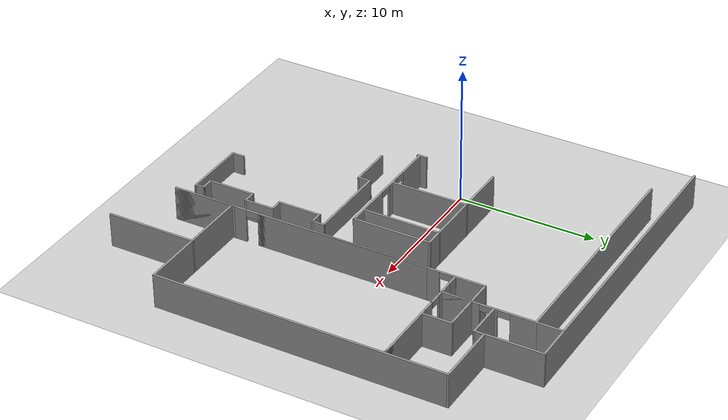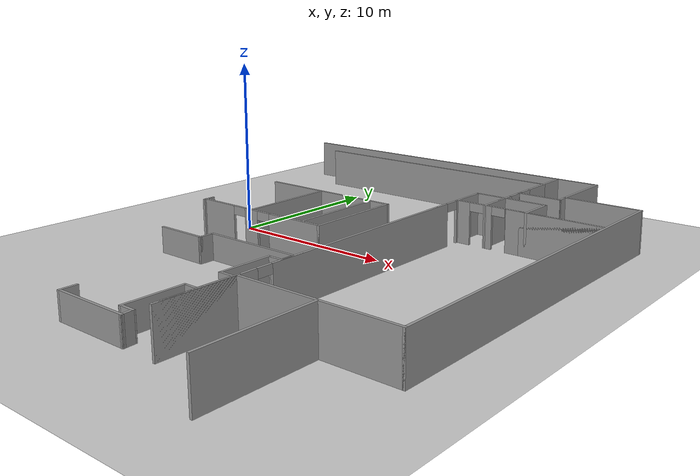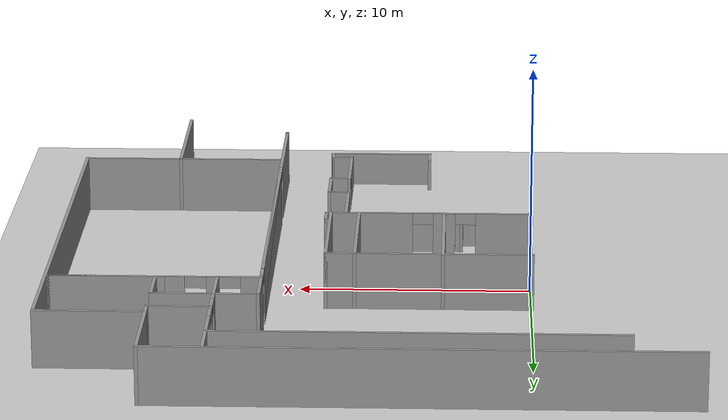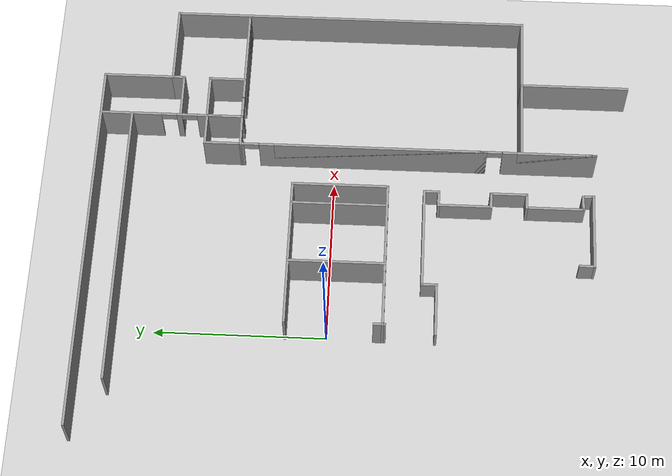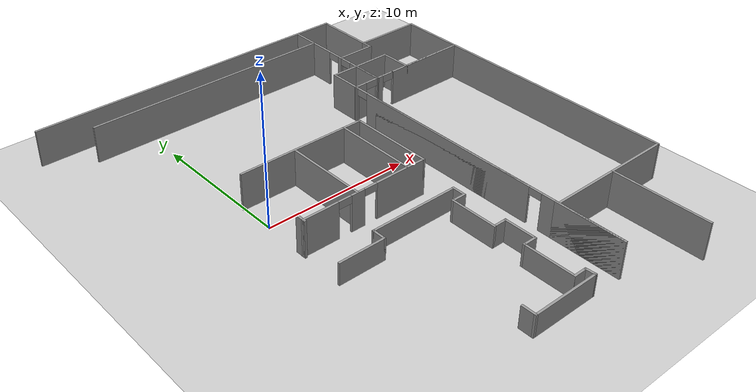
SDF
<sdf version="1.6">
 <world name="default">
  <model name="ground_plane">
   <static>1</static>
   <link name="link">
    <collision name="collision">
     <geometry><plane><normal>0 0 1</normal><size>100 100</size></plane></geometry>
     <surface><friction><ode><mu>100</mu><mu2>50</mu2></ode></friction></surface>
    </collision>
    <visual name="visual">
     <cast_shadows>0</cast_shadows>
     <geometry><plane><normal>0 0 1</normal><size>100 100</size></plane></geometry>
     <material>
      <script><uri>file://media/materials/scripts/gazebo.material</uri><name>Gazebo/Grey</name></script>
     </material>
    </visual>
   </link>
  </model>
  <model name="REPF">
   <pose>-1.32849 -1.57577 0 0 -0 0</pose>
   <link name="Wall_293">
    <collision name="Wall_293_Collision">
     <geometry><box><size>6.5 0.15 2.5</size></box></geometry>
     <pose>0 0 1.25 0 -0 0</pose>
    </collision>
    <visual name="Wall_293_Visual">
     <pose>0 0 1.25 0 -0 0</pose>
     <geometry><box><size>6.5 0.15 2.5</size></box></geometry>
     <material>
      <script><uri>file://media/materials/scripts/gazebo.material</uri><name>Gazebo/Grey</name></script>
      <ambient>1 1 1 1</ambient>
     </material>
    </visual>
    <pose>17.421 -12.6729 0 0 -0 1.5708</pose>
   </link>
   <link name="Wall_294">
    <collision name="Wall_294_Collision">
     <geometry><box><size>4.5 0.15 2.5</size></box></geometry>
     <pose>0 0 1.25 0 -0 0</pose>
    </collision>
    <visual name="Wall_294_Visual">
     <pose>0 0 1.25 0 -0 0</pose>
     <geometry><box><size>4.5 0.15 2.5</size></box></geometry>
     <material>
      <script><uri>file://media/materials/scripts/gazebo.material</uri><name>Gazebo/Grey</name></script>
      <ambient>1 1 1 1</ambient>
     </material>
    </visual>
    <pose>19.596 -9.49791 0 0 -0 0</pose>
   </link>
   <link name="Wall_295">
    <collision name="Wall_295_Collision">
     <geometry><box><size>21.25 0.15 2.5</size></box></geometry>
     <pose>0 0 1.25 0 -0 0</pose>
    </collision>
    <visual name="Wall_295_Visual">
     <pose>0 0 1.25 0 -0 0</pose>
     <geometry><box><size>21.25 0.15 2.5</size></box></geometry>
     <material>
      <script><uri>file://media/materials/scripts/gazebo.material</uri><name>Gazebo/Grey</name></script>
      <ambient>1 1 1 1</ambient>
     </material>
    </visual>
    <pose>21.771 1.05209 0 0 -0 1.5708</pose>
   </link>
   <link name="Wall_296">
    <collision name="Wall_296_Collision">
     <geometry><box><size>4.75 0.15 2.5</size></box></geometry>
     <pose>0 0 1.25 0 -0 0</pose>
    </collision>
    <visual name="Wall_296_Visual">
     <pose>0 0 1.25 0 -0 0</pose>
     <geometry><box><size>4.75 0.15 2.5</size></box></geometry>
     <material>
      <script><uri>file://media/materials/scripts/gazebo.material</uri><name>Gazebo/Grey</name></script>
      <ambient>1 1 1 1</ambient>
     </material>
    </visual>
    <pose>19.471 11.6021 0 0 -0 3.14159</pose>
   </link>
   <link name="Wall_297">
    <collision name="Wall_297_Collision">
     <geometry><box><size>4.25 0.15 2.5</size></box></geometry>
     <pose>0 0 1.25 0 -0 0</pose>
    </collision>
    <visual name="Wall_297_Visual">
     <pose>0 0 1.25 0 -0 0</pose>
     <geometry><box><size>4.25 0.15 2.5</size></box></geometry>
     <material>
      <script><uri>file://media/materials/scripts/gazebo.material</uri><name>Gazebo/Grey</name></script>
      <ambient>1 1 1 1</ambient>
     </material>
    </visual>
    <pose>17.171 13.6521 0 0 -0 1.5708</pose>
   </link>
   <link name="Wall_298">
    <collision name="Wall_298_Collision">
     <geometry><box><size>22.75 0.15 2.5</size></box></geometry>
     <pose>0 0 1.25 0 -0 0</pose>
    </collision>
    <visual name="Wall_298_Visual">
     <pose>0 0 1.25 0 -0 0</pose>
     <geometry><box><size>22.75 0.15 2.5</size></box></geometry>
     <material>
      <script><uri>file://media/materials/scripts/gazebo.material</uri><name>Gazebo/Grey</name></script>
      <ambient>1 1 1 1</ambient>
     </material>
    </visual>
    <pose>5.87097 15.7021 0 0 -0 3.14159</pose>
   </link>
   <link name="Wall_309">
    <collision name="Wall_309_Collision">
     <geometry><box><size>17.25 0.15 2.5</size></box></geometry>
     <pose>0 0 1.25 0 -0 0</pose>
    </collision>
    <visual name="Wall_309_Visual">
     <pose>0 0 1.25 0 -0 0</pose>
     <geometry><box><size>17.25 0.15 2.5</size></box></geometry>
     <material>
      <script><uri>file://media/materials/scripts/gazebo.material</uri><name>Gazebo/Grey</name></script>
      <ambient>1 1 1 1</ambient>
     </material>
    </visual>
    <pose>5.99398 13.832 0 0 -0 0</pose>
   </link>
   <link name="Wall_310">
    <collision name="Wall_310_Collision">
     <geometry><box><size>2 0.15 2.5</size></box></geometry>
     <pose>0 0 1.25 0 -0 0</pose>
    </collision>
    <visual name="Wall_310_Visual">
     <pose>0 0 1.25 0 -0 0</pose>
     <geometry><box><size>2 0.15 2.5</size></box></geometry>
     <material>
      <script><uri>file://media/materials/scripts/gazebo.material</uri><name>Gazebo/Grey</name></script>
      <ambient>1 1 1 1</ambient>
     </material>
    </visual>
    <pose>14.544 14.757 0 0 -0 1.5708</pose>
   </link>
   <link name="Wall_312">
    <pose>14.544 10.532 0 0 0 -1.5708</pose>
    <visual name="Wall_312_Visual_0">
     <pose>-2.44988 0 1.25 0 -0 0</pose>
     <geometry><box><size>1.85025 0.15 2.5</size></box></geometry>
     <material>
      <script><uri>file://media/materials/scripts/gazebo.material</uri><name>Gazebo/Grey</name></script>
      <ambient>1 1 1 1</ambient>
     </material>
    </visual>
    <collision name="Wall_312_Collision_0">
     <geometry><box><size>1.85025 0.15 2.5</size></box></geometry>
     <pose>-2.44988 0 1.25 0 -0 0</pose>
    </collision>
    <visual name="Wall_312_Visual_1">
     <pose>-0.462424 0 1.25 0 -0 0</pose>
     <geometry><box><size>0.324652 0.15 2.5</size></box></geometry>
     <material>
      <script><uri>file://media/materials/scripts/gazebo.material</uri><name>Gazebo/Grey</name></script>
      <ambient>1 1 1 1</ambient>
     </material>
    </visual>
    <collision name="Wall_312_Collision_1">
     <geometry><box><size>0.324652 0.15 2.5</size></box></geometry>
     <pose>-0.462424 0 1.25 0 -0 0</pose>
    </collision>
    <visual name="Wall_312_Visual_2">
     <pose>1.98745 0 1.25 0 -0 0</pose>
     <geometry><box><size>2.7751 0.15 2.5</size></box></geometry>
     <material>
      <script><uri>file://media/materials/scripts/gazebo.material</uri><name>Gazebo/Grey</name></script>
      <ambient>1 1 1 1</ambient>
     </material>
    </visual>
    <collision name="Wall_312_Collision_2">
     <geometry><box><size>2.7751 0.15 2.5</size></box></geometry>
     <pose>1.98745 0 1.25 0 -0 0</pose>
    </collision>
    <visual name="Wall_312_Visual_3">
     <pose>-1.07475 0 2.25 0 -0 0</pose>
     <geometry><box><size>0.9 0.15 0.5</size></box></geometry>
     <material>
      <script><uri>file://media/materials/scripts/gazebo.material</uri><name>Gazebo/Grey</name></script>
      <ambient>1 1 1 1</ambient>
     </material>
    </visual>
    <collision name="Wall_312_Collision_3">
     <geometry><box><size>0.9 0.15 0.5</size></box></geometry>
     <pose>-1.07475 0 2.25 0 -0 0</pose>
    </collision>
    <visual name="Wall_312_Visual_4">
     <pose>0.149902 0 2.25 0 -0 0</pose>
     <geometry><box><size>0.9 0.15 0.5</size></box></geometry>
     <material>
      <script><uri>file://media/materials/scripts/gazebo.material</uri><name>Gazebo/Grey</name></script>
      <ambient>1 1 1 1</ambient>
     </material>
    </visual>
    <collision name="Wall_312_Collision_4">
     <geometry><box><size>0.9 0.15 0.5</size></box></geometry>
     <pose>0.149902 0 2.25 0 -0 0</pose>
    </collision>
   </link>
   <link name="Wall_313">
    <pose>13.619 7.22222 0 0 0 -3.13104</pose>
    <visual name="Wall_313_Visual_0">
     <pose>-0.91553 0 1.25 0 -0 0</pose>
     <geometry><box><size>0.168939 0.15 2.5</size></box></geometry>
     <material>
      <script><uri>file://media/materials/scripts/gazebo.material</uri><name>Gazebo/Grey</name></script>
      <ambient>1 1 1 1</ambient>
     </material>
    </visual>
    <collision name="Wall_313_Collision_0">
     <geometry><box><size>0.168939 0.15 2.5</size></box></geometry>
     <pose>-0.91553 0 1.25 0 -0 0</pose>
    </collision>
    <visual name="Wall_313_Visual_1">
     <pose>0.53447 0 1.25 0 -0 0</pose>
     <geometry><box><size>0.931061 0.15 2.5</size></box></geometry>
     <material>
      <script><uri>file://media/materials/scripts/gazebo.material</uri><name>Gazebo/Grey</name></script>
      <ambient>1 1 1 1</ambient>
     </material>
    </visual>
    <collision name="Wall_313_Collision_1">
     <geometry><box><size>0.931061 0.15 2.5</size></box></geometry>
     <pose>0.53447 0 1.25 0 -0 0</pose>
    </collision>
    <visual name="Wall_313_Visual_2">
     <pose>-0.381061 0 2.25 0 -0 0</pose>
     <geometry><box><size>0.9 0.15 0.5</size></box></geometry>
     <material>
      <script><uri>file://media/materials/scripts/gazebo.material</uri><name>Gazebo/Grey</name></script>
      <ambient>1 1 1 1</ambient>
     </material>
    </visual>
    <collision name="Wall_313_Collision_2">
     <geometry><box><size>0.9 0.15 0.5</size></box></geometry>
     <pose>-0.381061 0 2.25 0 -0 0</pose>
    </collision>
   </link>
   <link name="Wall_314">
    <collision name="Wall_314_Collision">
     <geometry><box><size>2.26953 0.15 2.5</size></box></geometry>
     <pose>0 0 1.25 0 -0 0</pose>
    </collision>
    <visual name="Wall_314_Visual">
     <pose>0 0 1.25 0 -0 0</pose>
     <geometry><box><size>2.26953 0.15 2.5</size></box></geometry>
     <material>
      <script><uri>file://media/materials/scripts/gazebo.material</uri><name>Gazebo/Grey</name></script>
      <ambient>1 1 1 1</ambient>
     </material>
    </visual>
    <pose>12.694 8.27222 0 0 -0 1.5708</pose>
   </link>
   <link name="Wall_315">
    <collision name="Wall_315_Collision">
     <geometry><box><size>2 0.15 2.5</size></box></geometry>
     <pose>0 0 1.25 0 -0 0</pose>
    </collision>
    <visual name="Wall_315_Visual">
     <pose>0 0 1.25 0 -0 0</pose>
     <geometry><box><size>2 0.15 2.5</size></box></geometry>
     <material>
      <script><uri>file://media/materials/scripts/gazebo.material</uri><name>Gazebo/Grey</name></script>
      <ambient>1 1 1 1</ambient>
     </material>
    </visual>
    <pose>13.619 9.33198 0 0 -0 0</pose>
   </link>
   <link name="Wall_317">
    <collision name="Wall_317_Collision">
     <geometry><box><size>2.75 0.15 2.5</size></box></geometry>
     <pose>0 0 1.25 0 -0 0</pose>
    </collision>
    <visual name="Wall_317_Visual">
     <pose>0 0 1.25 0 -0 0</pose>
     <geometry><box><size>2.75 0.15 2.5</size></box></geometry>
     <material>
      <script><uri>file://media/materials/scripts/gazebo.material</uri><name>Gazebo/Grey</name></script>
      <ambient>1 1 1 1</ambient>
     </material>
    </visual>
    <pose>15.8713 10.9244 0 0 -0 0</pose>
   </link>
   <link name="Wall_318">
    <collision name="Wall_318_Collision">
     <geometry><box><size>0.827663 0.15 2.5</size></box></geometry>
     <pose>0 0 1.25 0 -0 0</pose>
    </collision>
    <visual name="Wall_318_Visual">
     <pose>0 0 1.25 0 -0 0</pose>
     <geometry><box><size>0.827663 0.15 2.5</size></box></geometry>
     <material>
      <script><uri>file://media/materials/scripts/gazebo.material</uri><name>Gazebo/Grey</name></script>
      <ambient>1 1 1 1</ambient>
     </material>
    </visual>
    <pose>17.1711 11.2633 0 0 -0 1.57131</pose>
   </link>
   <link name="Wall_320">
    <collision name="Wall_320_Collision">
     <geometry><box><size>2.25 0.15 2.5</size></box></geometry>
     <pose>0 0 1.25 0 -0 0</pose>
    </collision>
    <visual name="Wall_320_Visual">
     <pose>0 0 1.25 0 -0 0</pose>
     <geometry><box><size>2.25 0.15 2.5</size></box></geometry>
     <material>
      <script><uri>file://media/materials/scripts/gazebo.material</uri><name>Gazebo/Grey</name></script>
      <ambient>1 1 1 1</ambient>
     </material>
    </visual>
    <pose>14.544 8.28198 0 0 0 -1.5708</pose>
   </link>
   <link name="Wall_321">
    <pose>18.094 7.23198 0 0 -0 0</pose>
    <visual name="Wall_321_Visual_0">
     <pose>-3.36352 0 1.25 0 -0 0</pose>
     <geometry><box><size>0.522969 0.15 2.5</size></box></geometry>
     <material>
      <script><uri>file://media/materials/scripts/gazebo.material</uri><name>Gazebo/Grey</name></script>
      <ambient>1 1 1 1</ambient>
     </material>
    </visual>
    <collision name="Wall_321_Collision_0">
     <geometry><box><size>0.522969 0.15 2.5</size></box></geometry>
     <pose>-3.36352 0 1.25 0 -0 0</pose>
    </collision>
    <visual name="Wall_321_Visual_1">
     <pose>0.711485 0 1.25 0 -0 0</pose>
     <geometry><box><size>5.82703 0.15 2.5</size></box></geometry>
     <material>
      <script><uri>file://media/materials/scripts/gazebo.material</uri><name>Gazebo/Grey</name></script>
      <ambient>1 1 1 1</ambient>
     </material>
    </visual>
    <collision name="Wall_321_Collision_1">
     <geometry><box><size>5.82703 0.15 2.5</size></box></geometry>
     <pose>0.711485 0 1.25 0 -0 0</pose>
    </collision>
    <visual name="Wall_321_Visual_2">
     <pose>1.13616 0 1.25 0 -0 0</pose>
     <geometry><box><size>4.97768 0.15 2.5</size></box></geometry>
     <material>
      <script><uri>file://media/materials/scripts/gazebo.material</uri><name>Gazebo/Grey</name></script>
      <ambient>1 1 1 1</ambient>
     </material>
    </visual>
    <collision name="Wall_321_Collision_2">
     <geometry><box><size>4.97768 0.15 2.5</size></box></geometry>
     <pose>1.13616 0 1.25 0 -0 0</pose>
    </collision>
    <visual name="Wall_321_Visual_3">
     <pose>-2.67735 0 2.25 0 -0 0</pose>
     <geometry><box><size>0.849354 0.15 0.5</size></box></geometry>
     <material>
      <script><uri>file://media/materials/scripts/gazebo.material</uri><name>Gazebo/Grey</name></script>
      <ambient>1 1 1 1</ambient>
     </material>
    </visual>
    <collision name="Wall_321_Collision_3">
     <geometry><box><size>0.849354 0.15 0.5</size></box></geometry>
     <pose>-2.67735 0 2.25 0 -0 0</pose>
    </collision>
   </link>
   <link name="Wall_323">
    <collision name="Wall_323_Collision">
     <geometry><box><size>2.75 0.15 2.5</size></box></geometry>
     <pose>0 0 1.25 0 -0 0</pose>
    </collision>
    <visual name="Wall_323_Visual">
     <pose>0 0 1.25 0 -0 0</pose>
     <geometry><box><size>2.75 0.15 2.5</size></box></geometry>
     <material>
      <script><uri>file://media/materials/scripts/gazebo.material</uri><name>Gazebo/Grey</name></script>
      <ambient>1 1 1 1</ambient>
     </material>
    </visual>
    <pose>15.844 9.33198 0 0 -0 0</pose>
   </link>
   <link name="Wall_324">
    <collision name="Wall_324_Collision">
     <geometry><box><size>2.25 0.15 2.5</size></box></geometry>
     <pose>0 0 1.25 0 -0 0</pose>
    </collision>
    <visual name="Wall_324_Visual">
     <pose>0 0 1.25 0 -0 0</pose>
     <geometry><box><size>2.25 0.15 2.5</size></box></geometry>
     <material>
      <script><uri>file://media/materials/scripts/gazebo.material</uri><name>Gazebo/Grey</name></script>
      <ambient>1 1 1 1</ambient>
     </material>
    </visual>
    <pose>17.144 8.28198 0 0 0 -1.5708</pose>
   </link>
   <link name="Wall_327">
    <pose>12.694 -3.32778 0 0 0 -1.5708</pose>
    <visual name="Wall_327_Visual_0">
     <pose>-10.4755 0 1.25 0 -0 0</pose>
     <geometry><box><size>0.29897 0.15 2.5</size></box></geometry>
     <material>
      <script><uri>file://media/materials/scripts/gazebo.material</uri><name>Gazebo/Grey</name></script>
      <ambient>1 1 1 1</ambient>
     </material>
    </visual>
    <collision name="Wall_327_Collision_0">
     <geometry><box><size>0.29897 0.15 2.5</size></box></geometry>
     <pose>-10.4755 0 1.25 0 -0 0</pose>
    </collision>
    <visual name="Wall_327_Visual_1">
     <pose>-2.64993 0 1.25 0 -0 0</pose>
     <geometry><box><size>13.5522 0.15 2.5</size></box></geometry>
     <material>
      <script><uri>file://media/materials/scripts/gazebo.material</uri><name>Gazebo/Grey</name></script>
      <ambient>1 1 1 1</ambient>
     </material>
    </visual>
    <collision name="Wall_327_Collision_1">
     <geometry><box><size>13.5522 0.15 2.5</size></box></geometry>
     <pose>-2.64993 0 1.25 0 -0 0</pose>
    </collision>
    <visual name="Wall_327_Visual_2">
     <pose>-2.20373 0 1.25 0 -0 0</pose>
     <geometry><box><size>12.6598 0.15 2.5</size></box></geometry>
     <material>
      <script><uri>file://media/materials/scripts/gazebo.material</uri><name>Gazebo/Grey</name></script>
      <ambient>1 1 1 1</ambient>
     </material>
    </visual>
    <collision name="Wall_327_Collision_2">
     <geometry><box><size>12.6598 0.15 2.5</size></box></geometry>
     <pose>-2.20373 0 1.25 0 -0 0</pose>
    </collision>
    <visual name="Wall_327_Visual_3">
     <pose>7.82559 0 1.25 0 -0 0</pose>
     <geometry><box><size>5.59883 0.15 2.5</size></box></geometry>
     <material>
      <script><uri>file://media/materials/scripts/gazebo.material</uri><name>Gazebo/Grey</name></script>
      <ambient>1 1 1 1</ambient>
     </material>
    </visual>
    <collision name="Wall_327_Collision_3">
     <geometry><box><size>5.59883 0.15 2.5</size></box></geometry>
     <pose>7.82559 0 1.25 0 -0 0</pose>
    </collision>
    <visual name="Wall_327_Visual_4">
     <pose>8.27478 0 1.25 0 -0 0</pose>
     <geometry><box><size>4.70045 0.15 2.5</size></box></geometry>
     <material>
      <script><uri>file://media/materials/scripts/gazebo.material</uri><name>Gazebo/Grey</name></script>
      <ambient>1 1 1 1</ambient>
     </material>
    </visual>
    <collision name="Wall_327_Collision_4">
     <geometry><box><size>4.70045 0.15 2.5</size></box></geometry>
     <pose>8.27478 0 1.25 0 -0 0</pose>
    </collision>
    <visual name="Wall_327_Visual_5">
     <pose>-9.87983 0 2.25 0 -0 0</pose>
     <geometry><box><size>0.892405 0.15 0.5</size></box></geometry>
     <material>
      <script><uri>file://media/materials/scripts/gazebo.material</uri><name>Gazebo/Grey</name></script>
      <ambient>1 1 1 1</ambient>
     </material>
    </visual>
    <collision name="Wall_327_Collision_5">
     <geometry><box><size>0.892405 0.15 0.5</size></box></geometry>
     <pose>-9.87983 0 2.25 0 -0 0</pose>
    </collision>
    <visual name="Wall_327_Visual_6">
     <pose>4.57536 0 2.25 0 -0 0</pose>
     <geometry><box><size>0.89838 0.15 0.5</size></box></geometry>
     <material>
      <script><uri>file://media/materials/scripts/gazebo.material</uri><name>Gazebo/Grey</name></script>
      <ambient>1 1 1 1</ambient>
     </material>
    </visual>
    <collision name="Wall_327_Collision_6">
     <geometry><box><size>0.89838 0.15 0.5</size></box></geometry>
     <pose>4.57536 0 2.25 0 -0 0</pose>
    </collision>
    <visual name="Wall_327_Visual_7">
     <pose>4.57536 0 2.25 0 -0 0</pose>
     <geometry><box><size>0.89838 0.15 0.5</size></box></geometry>
     <material>
      <script><uri>file://media/materials/scripts/gazebo.material</uri><name>Gazebo/Grey</name></script>
      <ambient>1 1 1 1</ambient>
     </material>
    </visual>
    <collision name="Wall_327_Collision_7">
     <geometry><box><size>0.89838 0.15 0.5</size></box></geometry>
     <pose>4.57536 0 2.25 0 -0 0</pose>
    </collision>
   </link>
   <link name="Wall_329">
    <collision name="Wall_329_Collision">
     <geometry><box><size>4.75 0.15 2.5</size></box></geometry>
     <pose>0 0 1.25 0 -0 0</pose>
    </collision>
    <visual name="Wall_329_Visual">
     <pose>0 0 1.25 0 -0 0</pose>
     <geometry><box><size>4.75 0.15 2.5</size></box></geometry>
     <material>
      <script><uri>file://media/materials/scripts/gazebo.material</uri><name>Gazebo/Grey</name></script>
      <ambient>1 1 1 1</ambient>
     </material>
    </visual>
    <pose>15.121 -9.49791 0 0 -0 3.14159</pose>
   </link>
   <link name="Wall_345">
    <pose>5.7082 -1.64702 0 0 -0 0</pose>
    <visual name="Wall_345_Visual_0">
     <pose>-3.24073 0 1.25 0 -0 0</pose>
     <geometry><box><size>2.51854 0.15 2.5</size></box></geometry>
     <material>
      <script><uri>file://media/materials/scripts/gazebo.material</uri><name>Gazebo/Grey</name></script>
      <ambient>1 1 1 1</ambient>
     </material>
    </visual>
    <collision name="Wall_345_Collision_0">
     <geometry><box><size>2.51854 0.15 2.5</size></box></geometry>
     <pose>-3.24073 0 1.25 0 -0 0</pose>
    </collision>
    <visual name="Wall_345_Visual_1">
     <pose>-0.593536 0 1.25 0 -0 0</pose>
     <geometry><box><size>0.97585 0.15 2.5</size></box></geometry>
     <material>
      <script><uri>file://media/materials/scripts/gazebo.material</uri><name>Gazebo/Grey</name></script>
      <ambient>1 1 1 1</ambient>
     </material>
    </visual>
    <collision name="Wall_345_Collision_1">
     <geometry><box><size>0.97585 0.15 2.5</size></box></geometry>
     <pose>-0.593536 0 1.25 0 -0 0</pose>
    </collision>
    <visual name="Wall_345_Visual_2">
     <pose>2.64719 0 1.25 0 -0 0</pose>
     <geometry><box><size>3.70561 0.15 2.5</size></box></geometry>
     <material>
      <script><uri>file://media/materials/scripts/gazebo.material</uri><name>Gazebo/Grey</name></script>
      <ambient>1 1 1 1</ambient>
     </material>
    </visual>
    <collision name="Wall_345_Collision_2">
     <geometry><box><size>3.70561 0.15 2.5</size></box></geometry>
     <pose>2.64719 0 1.25 0 -0 0</pose>
    </collision>
    <visual name="Wall_345_Visual_3">
     <pose>-1.53146 0 2.25 0 -0 0</pose>
     <geometry><box><size>0.9 0.15 0.5</size></box></geometry>
     <material>
      <script><uri>file://media/materials/scripts/gazebo.material</uri><name>Gazebo/Grey</name></script>
      <ambient>1 1 1 1</ambient>
     </material>
    </visual>
    <collision name="Wall_345_Collision_3">
     <geometry><box><size>0.9 0.15 0.5</size></box></geometry>
     <pose>-1.53146 0 2.25 0 -0 0</pose>
    </collision>
    <visual name="Wall_345_Visual_4">
     <pose>0.344389 0 2.25 0 -0 0</pose>
     <geometry><box><size>0.9 0.15 0.5</size></box></geometry>
     <material>
      <script><uri>file://media/materials/scripts/gazebo.material</uri><name>Gazebo/Grey</name></script>
      <ambient>1 1 1 1</ambient>
     </material>
    </visual>
    <collision name="Wall_345_Collision_4">
     <geometry><box><size>0.9 0.15 0.5</size></box></geometry>
     <pose>0.344389 0 2.25 0 -0 0</pose>
    </collision>
   </link>
   <link name="Wall_346">
    <collision name="Wall_346_Collision">
     <geometry><box><size>5.75 0.15 2.5</size></box></geometry>
     <pose>0 0 1.25 0 -0 0</pose>
    </collision>
    <visual name="Wall_346_Visual">
     <pose>0 0 1.25 0 -0 0</pose>
     <geometry><box><size>5.75 0.15 2.5</size></box></geometry>
     <material>
      <script><uri>file://media/materials/scripts/gazebo.material</uri><name>Gazebo/Grey</name></script>
      <ambient>1 1 1 1</ambient>
     </material>
    </visual>
    <pose>10.1332 1.15298 0 0 -0 1.5708</pose>
   </link>
   <link name="Wall_347">
    <collision name="Wall_347_Collision">
     <geometry><box><size>9 0.15 2.5</size></box></geometry>
     <pose>0 0 1.25 0 -0 0</pose>
    </collision>
    <visual name="Wall_347_Visual">
     <pose>0 0 1.25 0 -0 0</pose>
     <geometry><box><size>9 0.15 2.5</size></box></geometry>
     <material>
      <script><uri>file://media/materials/scripts/gazebo.material</uri><name>Gazebo/Grey</name></script>
      <ambient>1 1 1 1</ambient>
     </material>
    </visual>
    <pose>5.7082 3.95298 0 0 -0 3.14159</pose>
   </link>
   <link name="Wall_350">
    <collision name="Wall_350_Collision">
     <geometry><box><size>0.75 0.15 2.5</size></box></geometry>
     <pose>0 0 1.25 0 -0 0</pose>
    </collision>
    <visual name="Wall_350_Visual">
     <pose>0 0 1.25 0 -0 0</pose>
     <geometry><box><size>0.75 0.15 2.5</size></box></geometry>
     <material>
      <script><uri>file://media/materials/scripts/gazebo.material</uri><name>Gazebo/Grey</name></script>
      <ambient>1 1 1 1</ambient>
     </material>
    </visual>
    <pose>1.2916 -1.46431 0 0 -0 1.5708</pose>
   </link>
   <link name="Wall_352">
    <collision name="Wall_352_Collision">
     <geometry><box><size>5.75 0.15 2.5</size></box></geometry>
     <pose>0 0 1.25 0 -0 0</pose>
    </collision>
    <visual name="Wall_352_Visual">
     <pose>0 0 1.25 0 -0 0</pose>
     <geometry><box><size>5.75 0.15 2.5</size></box></geometry>
     <material>
      <script><uri>file://media/materials/scripts/gazebo.material</uri><name>Gazebo/Grey</name></script>
      <ambient>1 1 1 1</ambient>
     </material>
    </visual>
    <pose>5.11026 1.15574 0 0 0 -1.5708</pose>
   </link>
   <link name="Wall_354">
    <collision name="Wall_354_Collision">
     <geometry><box><size>4.75 0.15 1.5</size></box></geometry>
     <pose>0 0 0.75 0 -0 0</pose>
    </collision>
    <visual name="Wall_354_Visual">
     <pose>0 0 0.75 0 -0 0</pose>
     <geometry><box><size>4.75 0.15 1.5</size></box></geometry>
     <material>
      <script><uri>file://media/materials/scripts/gazebo.material</uri><name>Gazebo/Grey</name></script>
      <ambient>1 1 1 1</ambient>
     </material>
    </visual>
    <pose>8.2026 -13.8241 0 0 -0 3.14159</pose>
   </link>
   <link name="Wall_355">
    <collision name="Wall_355_Collision">
     <geometry><box><size>1 0.15 1.5</size></box></geometry>
     <pose>0 0 0.75 0 -0 0</pose>
    </collision>
    <visual name="Wall_355_Visual">
     <pose>0 0 0.75 0 -0 0</pose>
     <geometry><box><size>1 0.15 1.5</size></box></geometry>
     <material>
      <script><uri>file://media/materials/scripts/gazebo.material</uri><name>Gazebo/Grey</name></script>
      <ambient>1 1 1 1</ambient>
     </material>
    </visual>
    <pose>5.9026 -13.3991 0 0 -0 1.5708</pose>
   </link>
   <link name="Wall_374">
    <collision name="Wall_374_Collision">
     <geometry><box><size>3.25 0.15 1.5</size></box></geometry>
     <pose>0 0 0.75 0 -0 0</pose>
    </collision>
    <visual name="Wall_374_Visual">
     <pose>0 0 0.75 0 -0 0</pose>
     <geometry><box><size>3.25 0.15 1.5</size></box></geometry>
     <material>
      <script><uri>file://media/materials/scripts/gazebo.material</uri><name>Gazebo/Grey</name></script>
      <ambient>1 1 1 1</ambient>
     </material>
    </visual>
    <pose>2.8026 -4.67412 0 0 -0 0</pose>
   </link>
   <link name="Wall_375">
    <collision name="Wall_375_Collision">
     <geometry><box><size>1 0.15 1.5</size></box></geometry>
     <pose>0 0 0.75 0 -0 0</pose>
    </collision>
    <visual name="Wall_375_Visual">
     <pose>0 0 0.75 0 -0 0</pose>
     <geometry><box><size>1 0.15 1.5</size></box></geometry>
     <material>
      <script><uri>file://media/materials/scripts/gazebo.material</uri><name>Gazebo/Grey</name></script>
      <ambient>1 1 1 1</ambient>
     </material>
    </visual>
    <pose>4.3526 -4.24912 0 0 -0 1.5708</pose>
   </link>
   <link name="Wall_376">
    <collision name="Wall_376_Collision">
     <geometry><box><size>6.25 0.15 1.5</size></box></geometry>
     <pose>0 0 0.75 0 -0 0</pose>
    </collision>
    <visual name="Wall_376_Visual">
     <pose>0 0 0.75 0 -0 0</pose>
     <geometry><box><size>6.25 0.15 1.5</size></box></geometry>
     <material>
      <script><uri>file://media/materials/scripts/gazebo.material</uri><name>Gazebo/Grey</name></script>
      <ambient>1 1 1 1</ambient>
     </material>
    </visual>
    <pose>7.4026 -3.82412 0 0 -0 0</pose>
   </link>
   <link name="Wall_377">
    <collision name="Wall_377_Collision">
     <geometry><box><size>1 0.15 1.5</size></box></geometry>
     <pose>0 0 0.75 0 -0 0</pose>
    </collision>
    <visual name="Wall_377_Visual">
     <pose>0 0 0.75 0 -0 0</pose>
     <geometry><box><size>1 0.15 1.5</size></box></geometry>
     <material>
      <script><uri>file://media/materials/scripts/gazebo.material</uri><name>Gazebo/Grey</name></script>
      <ambient>1 1 1 1</ambient>
     </material>
    </visual>
    <pose>10.4526 -4.24912 0 0 0 -1.5708</pose>
   </link>
   <link name="Wall_378">
    <collision name="Wall_378_Collision">
     <geometry><box><size>1.031 0.15 1.5</size></box></geometry>
     <pose>0 0 0.75 0 -0 0</pose>
    </collision>
    <visual name="Wall_378_Visual">
     <pose>0 0 0.75 0 -0 0</pose>
     <geometry><box><size>1.031 0.15 1.5</size></box></geometry>
     <material>
      <script><uri>file://media/materials/scripts/gazebo.material</uri><name>Gazebo/Grey</name></script>
      <ambient>1 1 1 1</ambient>
     </material>
    </visual>
    <pose>10.0121 -4.67412 0 0 -0 3.14159</pose>
   </link>
   <link name="Wall_379">
    <collision name="Wall_379_Collision">
     <geometry><box><size>3.25 0.15 1.5</size></box></geometry>
     <pose>0 0 0.75 0 -0 0</pose>
    </collision>
    <visual name="Wall_379_Visual">
     <pose>0 0 0.75 0 -0 0</pose>
     <geometry><box><size>3.25 0.15 1.5</size></box></geometry>
     <material>
      <script><uri>file://media/materials/scripts/gazebo.material</uri><name>Gazebo/Grey</name></script>
      <ambient>1 1 1 1</ambient>
     </material>
    </visual>
    <pose>9.5716 -6.22412 0 0 0 -1.5708</pose>
   </link>
   <link name="Wall_380">
    <collision name="Wall_380_Collision">
     <geometry><box><size>1.03061 0.15 1.5</size></box></geometry>
     <pose>0 0 0.75 0 -0 0</pose>
    </collision>
    <visual name="Wall_380_Visual">
     <pose>0 0 0.75 0 -0 0</pose>
     <geometry><box><size>1.03061 0.15 1.5</size></box></geometry>
     <material>
      <script><uri>file://media/materials/scripts/gazebo.material</uri><name>Gazebo/Grey</name></script>
      <ambient>1 1 1 1</ambient>
     </material>
    </visual>
    <pose>10.0121 -7.77412 0 0 -0 0</pose>
   </link>
   <link name="Wall_381">
    <collision name="Wall_381_Collision">
     <geometry><box><size>2.25 0.15 1.5</size></box></geometry>
     <pose>0 0 0.75 0 -0 0</pose>
    </collision>
    <visual name="Wall_381_Visual">
     <pose>0 0 0.75 0 -0 0</pose>
     <geometry><box><size>2.25 0.15 1.5</size></box></geometry>
     <material>
      <script><uri>file://media/materials/scripts/gazebo.material</uri><name>Gazebo/Grey</name></script>
      <ambient>1 1 1 1</ambient>
     </material>
    </visual>
    <pose>10.4526 -8.82412 0 0 0 -1.5708</pose>
   </link>
   <link name="Wall_382">
    <collision name="Wall_382_Collision">
     <geometry><box><size>1 0.15 1.5</size></box></geometry>
     <pose>0 0 0.75 0 -0 0</pose>
    </collision>
    <visual name="Wall_382_Visual">
     <pose>0 0 0.75 0 -0 0</pose>
     <geometry><box><size>1 0.15 1.5</size></box></geometry>
     <material>
      <script><uri>file://media/materials/scripts/gazebo.material</uri><name>Gazebo/Grey</name></script>
      <ambient>1 1 1 1</ambient>
     </material>
    </visual>
    <pose>10.0276 -9.87412 0 0 -0 3.14159</pose>
   </link>
   <link name="Wall_383">
    <collision name="Wall_383_Collision">
     <geometry><box><size>3.5 0.15 1.5</size></box></geometry>
     <pose>0 0 0.75 0 -0 0</pose>
    </collision>
    <visual name="Wall_383_Visual">
     <pose>0 0 0.75 0 -0 0</pose>
     <geometry><box><size>3.5 0.15 1.5</size></box></geometry>
     <material>
      <script><uri>file://media/materials/scripts/gazebo.material</uri><name>Gazebo/Grey</name></script>
      <ambient>1 1 1 1</ambient>
     </material>
    </visual>
    <pose>9.6026 -11.5491 0 0 0 -1.5708</pose>
   </link>
   <link name="Wall_384">
    <collision name="Wall_384_Collision">
     <geometry><box><size>1 0.15 1.5</size></box></geometry>
     <pose>0 0 0.75 0 -0 0</pose>
    </collision>
    <visual name="Wall_384_Visual">
     <pose>0 0 0.75 0 -0 0</pose>
     <geometry><box><size>1 0.15 1.5</size></box></geometry>
     <material>
      <script><uri>file://media/materials/scripts/gazebo.material</uri><name>Gazebo/Grey</name></script>
      <ambient>1 1 1 1</ambient>
     </material>
    </visual>
    <pose>10.0276 -13.2241 0 0 -0 0</pose>
   </link>
   <link name="Wall_385">
    <collision name="Wall_385_Collision">
     <geometry><box><size>0.75208 0.15 1.5</size></box></geometry>
     <pose>0 0 0.75 0 -0 0</pose>
    </collision>
    <visual name="Wall_385_Visual">
     <pose>0 0 0.75 0 -0 0</pose>
     <geometry><box><size>0.75208 0.15 1.5</size></box></geometry>
     <material>
      <script><uri>file://media/materials/scripts/gazebo.material</uri><name>Gazebo/Grey</name></script>
      <ambient>1 1 1 1</ambient>
     </material>
    </visual>
    <pose>10.4776 -13.5241 0 0 0 -1.48765</pose>
   </link>
   <link name="Wall_393">
    <collision name="Wall_393_Collision">
     <geometry><box><size>5.75 0.15 2.5</size></box></geometry>
     <pose>0 0 1.25 0 -0 0</pose>
    </collision>
    <visual name="Wall_393_Visual">
     <pose>0 0 1.25 0 -0 0</pose>
     <geometry><box><size>5.75 0.15 2.5</size></box></geometry>
     <material>
      <script><uri>file://media/materials/scripts/gazebo.material</uri><name>Gazebo/Grey</name></script>
      <ambient>1 1 1 1</ambient>
     </material>
    </visual>
    <pose>8.88731 1.15496 0 0 0 -1.5708</pose>
   </link>
   <static>1</static>
  </model>
 </world>
</sdf>
